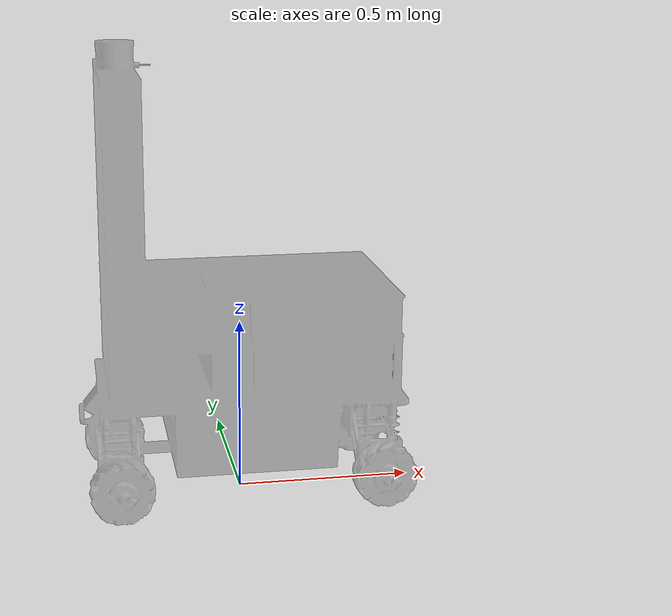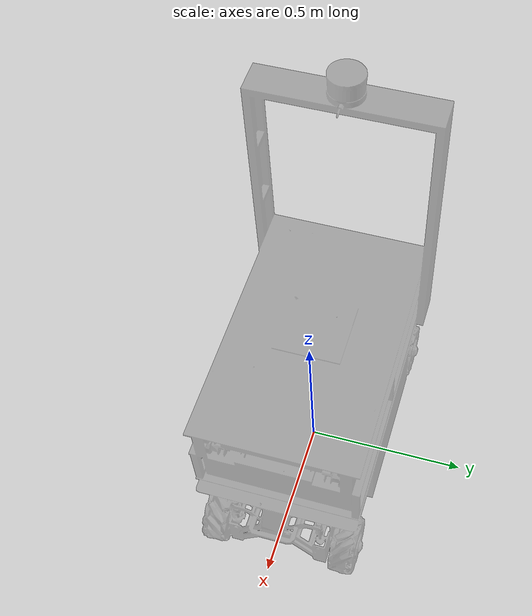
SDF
<?xml version="1.0" ?>
<sdf version="1.6">
  <model name="mlbot_sim">
    <link name="link">
      <pose>0 0 0 0 0 0</pose>
      <inertial>
        <origin>
          <xyz>0.10608 -0.0022763 0.48772 </xyz>
          <rpy>0 0 0 </rpy>
        </origin>
        <mass>147640</mass>
        <inertia>
          <ixx>418650</ixx>
          <ixy>2.8949E-06</ixy>
          <ixz>-1.2868E-06</ixz>
          <iyy>418650</iyy>
          <iyz>1.5599E-05</iyz>
          <izz>800610</izz>
        </inertia>
      </inertial>
      <collision name="collision">
        <geometry>
          <box>
            <size>0.01 0.01 0.01</size>
          </box>
        </geometry>

      </collision>
      <visual name="visual">
        <material>
          <ambient>0.5 0.5 0.5 0.1"</ambient>
          <diffuse>0.5 0.5 0.5 0.5</diffuse>
          <emissive>0.8 0.2 0.2 1</emissive>
        </material>
        <geometry>
          <mesh>
            <scale>0.001 0.001 0.001</scale>
            <uri>model://mlbot_sim/meshes/mlbot_sim.stl</uri>
          </mesh>
        </geometry>
      </visual>
    </link>
  </model>
</sdf>
